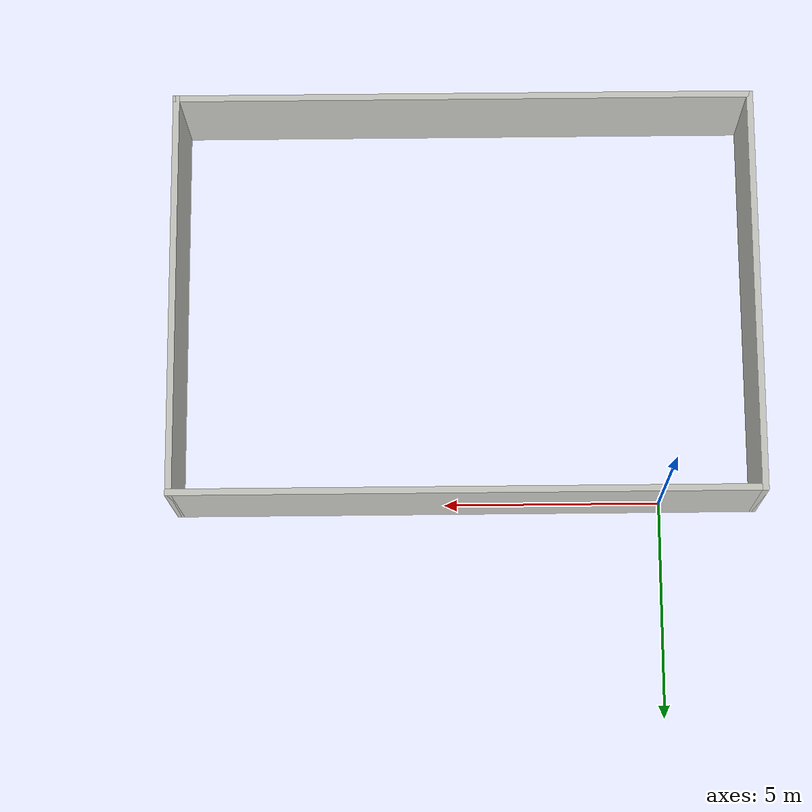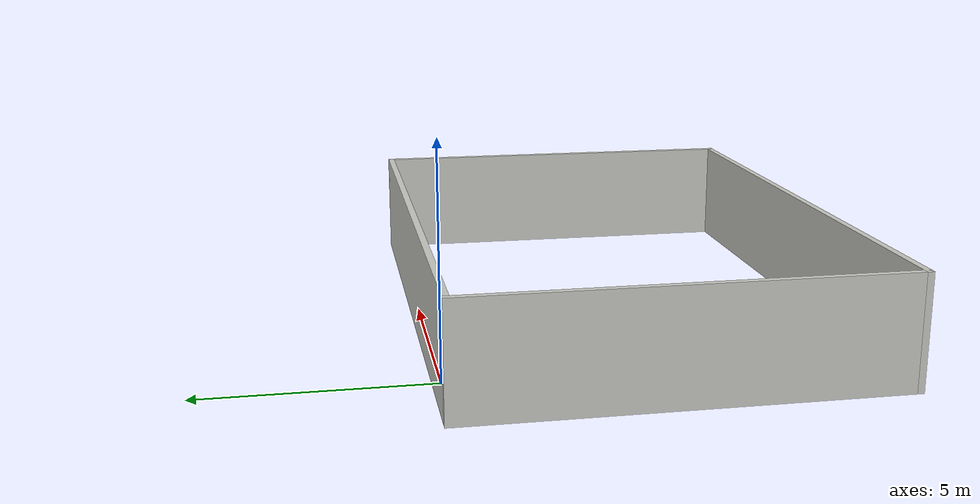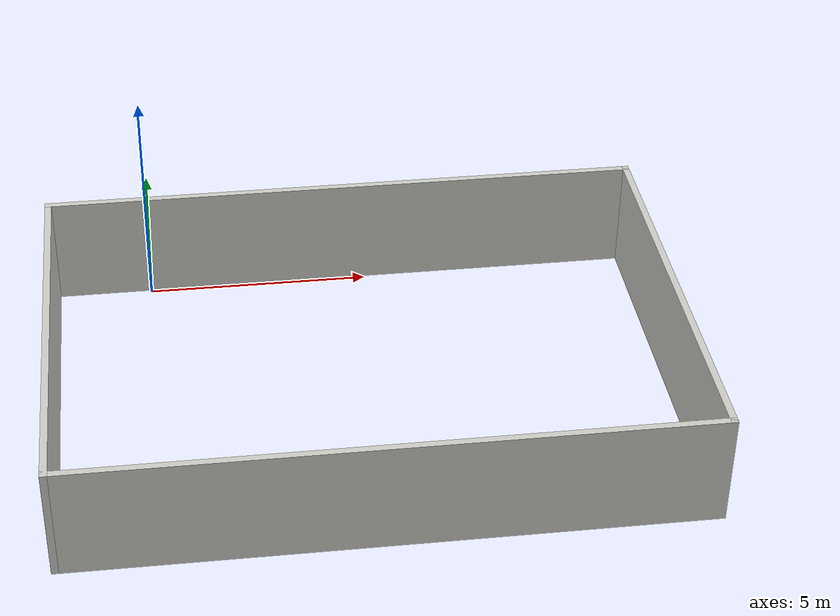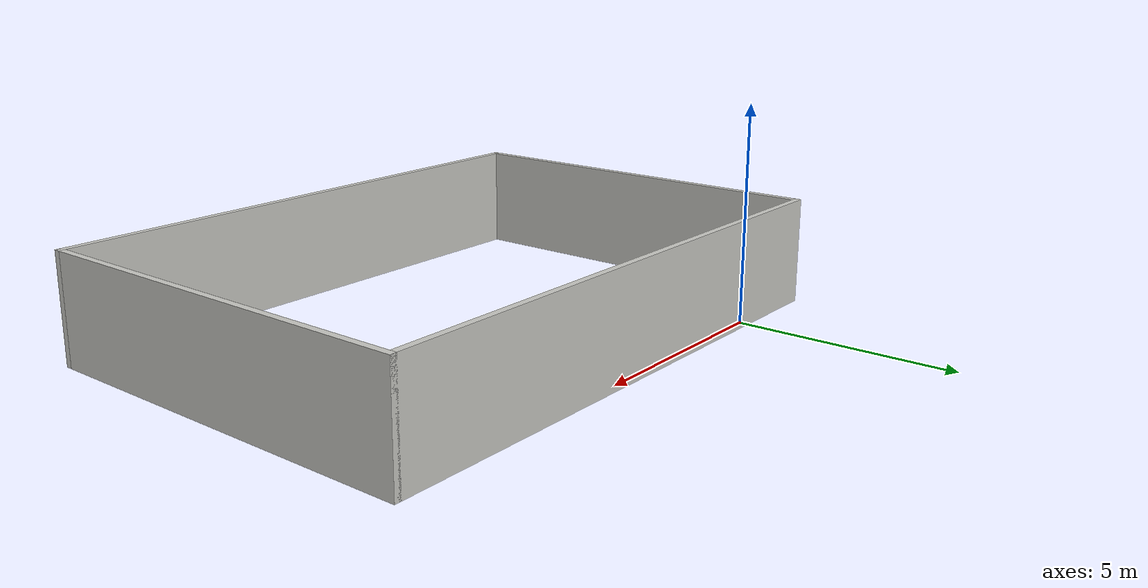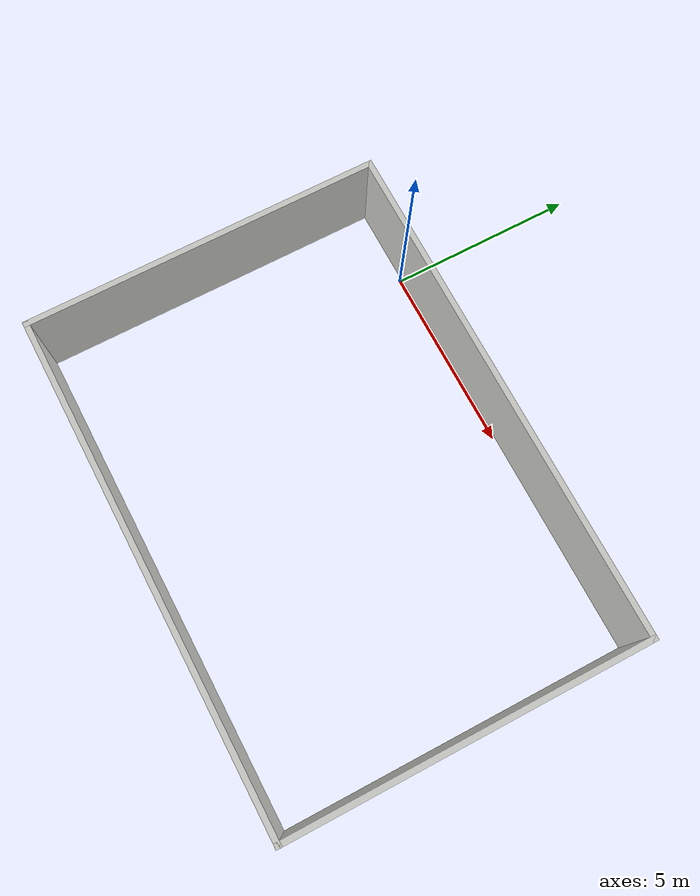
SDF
<?xml version='1.0'?>
<sdf version='1.7'>
  <model name='first_test_walls'>
    <pose>4.48178 -4.54744 0 0 -0 0</pose>
    <link name='Wall_3'>
      <collision name='Wall_3_Collision'>
        <geometry>
          <box>
            <size>9.5 0.15 2.5</size>
          </box>
        </geometry>
        <pose>0 0 1.25 0 -0 0</pose>
      </collision>
      <visual name='Wall_3_Visual'>
        <pose>0 0 1.25 0 -0 0</pose>
        <geometry>
          <box>
            <size>9.5 0.15 2.5</size>
          </box>
        </geometry>
        <material>
          <script>
            <uri>file://media/materials/scripts/gazebo.material</uri>
            <name>Gazebo/CeilingTiled</name>
          </script>
          <ambient>1 1 1 1</ambient>
        </material>
        <meta>
          <layer>0</layer>
        </meta>
      </visual>
      <pose>-6.675 0 0 0 -0 1.5708</pose>
    </link>
    <link name='Wall_4'>
      <collision name='Wall_4_Collision'>
        <geometry>
          <box>
            <size>13.5 0.15 2.5</size>
          </box>
        </geometry>
        <pose>0 0 1.25 0 -0 0</pose>
      </collision>
      <visual name='Wall_4_Visual'>
        <pose>0 0 1.25 0 -0 0</pose>
        <geometry>
          <box>
            <size>13.5 0.15 2.5</size>
          </box>
        </geometry>
        <material>
          <script>
            <uri>file://media/materials/scripts/gazebo.material</uri>
            <name>Gazebo/CeilingTiled</name>
          </script>
          <ambient>1 1 1 1</ambient>
        </material>
        <meta>
          <layer>0</layer>
        </meta>
      </visual>
      <pose>0 4.675 0 0 -0 0</pose>
    </link>
    <link name='Wall_5'>
      <collision name='Wall_5_Collision'>
        <geometry>
          <box>
            <size>9.5 0.15 2.5</size>
          </box>
        </geometry>
        <pose>0 0 1.25 0 -0 0</pose>
      </collision>
      <visual name='Wall_5_Visual'>
        <pose>0 0 1.25 0 -0 0</pose>
        <geometry>
          <box>
            <size>9.5 0.15 2.5</size>
          </box>
        </geometry>
        <material>
          <script>
            <uri>file://media/materials/scripts/gazebo.material</uri>
            <name>Gazebo/CeilingTiled</name>
          </script>
          <ambient>1 1 1 1</ambient>
        </material>
        <meta>
          <layer>0</layer>
        </meta>
      </visual>
      <pose>6.675 0 0 0 -0 -1.5708</pose>
    </link>
    <link name='Wall_6'>
      <collision name='Wall_6_Collision'>
        <geometry>
          <box>
            <size>13.5 0.15 2.5</size>
          </box>
        </geometry>
        <pose>0 0 1.25 0 -0 0</pose>
      </collision>
      <visual name='Wall_6_Visual'>
        <pose>0 0 1.25 0 -0 0</pose>
        <geometry>
          <box>
            <size>13.5 0.15 2.5</size>
          </box>
        </geometry>
        <material>
          <script>
            <uri>file://media/materials/scripts/gazebo.material</uri>
            <name>Gazebo/CeilingTiled</name>
          </script>
          <ambient>1 1 1 1</ambient>
        </material>
        <meta>
          <layer>0</layer>
        </meta>
      </visual>
      <pose>0 -4.675 0 0 -0 3.14159</pose>
    </link>
    <static>1</static>
  </model>
</sdf>
